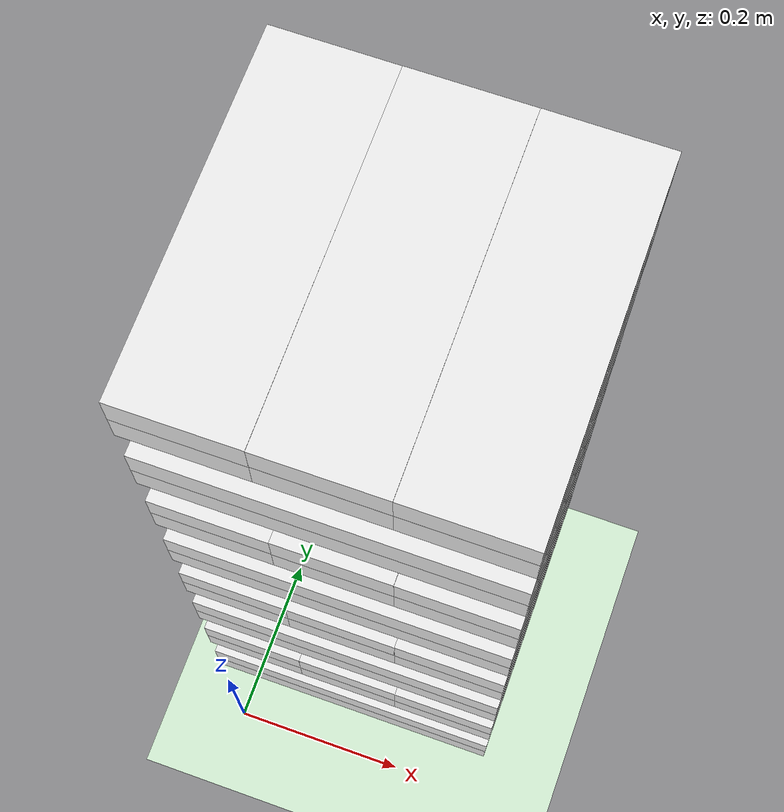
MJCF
# -*- coding: utf-8 -*-
"""
Created on Wed Mar 29 16:58:28 2023

@author: agarc
"""

<mujoco model='jenga'>
    <compiler coordinate='local' angle='radian' />
    <default>
        <joint limited='false'/>
        <geom contype='1' conaffinity='1' condim='3' friction='0.3 .1 .1'
        	solref="0.01 1" solimp=".99 .99 0.005" material="geom"/>
    </default>

    <asset>
        <material name="geom" rgba=".9 .9 .9 1"/>
    </asset>

    <option timestep='0.002' solver="CG" jacobian="sparse" tolerance="1e-7" cone="elliptic" iterations="100"/>

    <size njmax="4000" nconmax="1000" nstack="1000000"/>

    <worldbody>
        <light directional="false" cutoff="40" exponent="20" diffuse="1 1 1" specular="0 0 0" pos="0 0 5" dir="0 0 -1"/>

        <geom name='ground' type='plane' conaffinity='1' pos='0 0 0' size='1 1 1' rgba='0.8 0.9 0.8 1'/>

        <body pos='.15 .05 0.3'>
            <freejoint/>
            <geom type='box' size='.15 .05 .015' />
            <geom type='box' size='.15 .05 .015'  quat='1 -0.1e-03  1.6e-03 0' pos='0 0 .029'/>
        </body>
        <body pos='.15 .15 0.3'>
            <freejoint/>
            <geom type='box' size='.15 .05 .015' />
            <geom type='box' size='.15 .05 .015'  quat='1 -0.8e-03  1.0e-03 0' pos='0 0 .029'/>
        </body>
        <body pos='.15 .25 0.3'>
            <freejoint/>
            <geom type='box' size='.15 .05 .015' />
            <geom type='box' size='.15 .05 .015'  quat='1  1.1e-03 -0.8e-03 0' pos='0 0 .029'/>
        </body>
        <body pos='.05 .15 0.4'>
            <freejoint/>
            <geom type='box' size='.05 .15 .015' />
            <geom type='box' size='.05 .15 .015'  quat='1 -0.6e-03  0.2e-03 0' pos='0 0 .029'/>
        </body>
        <body pos='.15 .15 0.4'>
            <freejoint/>
            <geom type='box' size='.05 .15 .015' />
            <geom type='box' size='.05 .15 .015'  quat='1 -1.6e-03  1.5e-03 0' pos='0 0 .029'/>
        </body>
        <body pos='.25 .15 0.4'>
            <freejoint/>
            <geom type='box' size='.05 .15 .015' />
            <geom type='box' size='.05 .15 .015'  quat='1 -0.8e-03 -0.1e-03 0' pos='0 0 .029'/>
        </body>
        <body pos='.15 .05 0.5'>
            <freejoint/>
            <geom type='box' size='.15 .05 .015' />
            <geom type='box' size='.15 .05 .015'  quat='1 -1.3e-03  0.1e-03 0' pos='0 0 .029'/>
        </body>
        <body pos='.15 .15 0.5'>
            <freejoint/>
            <geom type='box' size='.15 .05 .015' />
            <geom type='box' size='.15 .05 .015'  quat='1 -1.4e-03 -1.7e-03 0' pos='0 0 .029'/>
        </body>
        <body pos='.15 .25 0.5'>
            <freejoint/>
            <geom type='box' size='.15 .05 .015' />
            <geom type='box' size='.15 .05 .015'  quat='1  1.9e-03  1.1e-03 0' pos='0 0 .029'/>
        </body>
        <body pos='.05 .15 0.6'>
            <freejoint/>
            <geom type='box' size='.05 .15 .015' />
            <geom type='box' size='.05 .15 .015'  quat='1  0.1e-03  0.4e-03 0' pos='0 0 .029'/>
        </body>
        <body pos='.15 .15 0.6'>
            <freejoint/>
            <geom type='box' size='.05 .15 .015' />
            <geom type='box' size='.05 .15 .015'  quat='1  0.7e-03  2.4e-03 0' pos='0 0 .029'/>
        </body>
        <body pos='.25 .15 0.6'>
            <freejoint/>
            <geom type='box' size='.05 .15 .015' />
            <geom type='box' size='.05 .15 .015'  quat='1 -0.8e-03 -1.3e-03 0' pos='0 0 .029'/>
        </body>
        <body pos='.15 .05 0.7'>
            <freejoint/>
            <geom type='box' size='.15 .05 .015' />
            <geom type='box' size='.15 .05 .015'  quat='1 -1.0e-03  0.1e-03 0' pos='0 0 .029'/>
        </body>
        <body pos='.15 .15 0.7'>
            <freejoint/>
            <geom type='box' size='.15 .05 .015' />
            <geom type='box' size='.15 .05 .015'  quat='1  1.5e-03 -1.2e-03 0' pos='0 0 .029'/>
        </body>
        <body pos='.15 .25 0.7'>
            <freejoint/>
            <geom type='box' size='.15 .05 .015' />
            <geom type='box' size='.15 .05 .015'  quat='1  1.2e-03 -0.5e-03 0' pos='0 0 .029'/>
        </body>
        <body pos='.05 .15 0.8'>
            <freejoint/>
            <geom type='box' size='.05 .15 .015' />
            <geom type='box' size='.05 .15 .015'  quat='1  1.7e-03  0.7e-03 0' pos='0 0 .029'/>
        </body>
        <body pos='.15 .15 0.8'>
            <freejoint/>
            <geom type='box' size='.05 .15 .015' />
            <geom type='box' size='.05 .15 .015'  quat='1 -0.6e-03 -1.7e-03 0' pos='0 0 .029'/>
        </body>
        <body pos='.25 .15 0.8'>
            <freejoint/>
            <geom type='box' size='.05 .15 .015' />
            <geom type='box' size='.05 .15 .015'  quat='1  0.5e-03  1.6e-03 0' pos='0 0 .029'/>
        </body>
        <body pos='.15 .05 0.9'>
            <freejoint/>
            <geom type='box' size='.15 .05 .015' />
            <geom type='box' size='.15 .05 .015'  quat='1 -1.0e-03 -0.6e-03 0' pos='0 0 .029'/>
        </body>
        <body pos='.15 .15 0.9'>
            <freejoint/>
            <geom type='box' size='.15 .05 .015' />
            <geom type='box' size='.15 .05 .015'  quat='1  0.2e-03 -0.0e-03 0' pos='0 0 .029'/>
        </body>
        <body pos='.15 .25 0.9'>
            <freejoint/>
            <geom type='box' size='.15 .05 .015' />
            <geom type='box' size='.15 .05 .015'  quat='1  1.3e-03 -0.3e-03 0' pos='0 0 .029'/>
        </body>
        <body pos='.05 .15   1'>
            <freejoint/>
            <geom type='box' size='.05 .15 .015' />
            <geom type='box' size='.05 .15 .015'  quat='1 -0.6e-03 -0.2e-03 0' pos='0 0 .029'/>
        </body>
        <body pos='.15 .15   1'>
            <freejoint/>
            <geom type='box' size='.05 .15 .015' />
            <geom type='box' size='.05 .15 .015'  quat='1  0.9e-03 -1.0e-03 0' pos='0 0 .029'/>
        </body>
        <body pos='.25 .15   1'>
            <freejoint/>
            <geom type='box' size='.05 .15 .015' />
            <geom type='box' size='.05 .15 .015'  quat='1  1.8e-03  1.1e-03 0' pos='0 0 .029'/>
        </body>

    </worldbody>
</mujoco>
